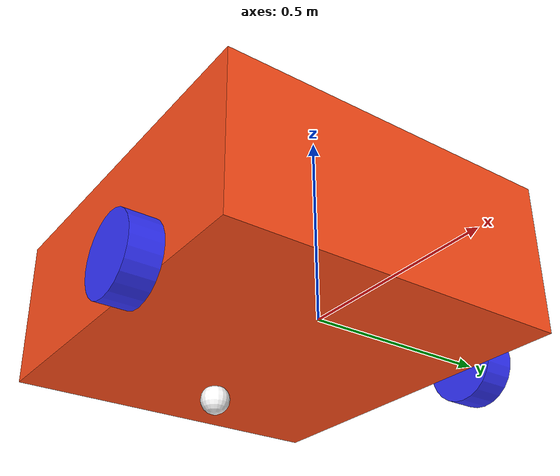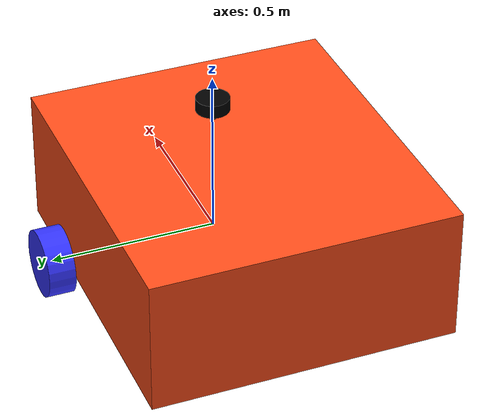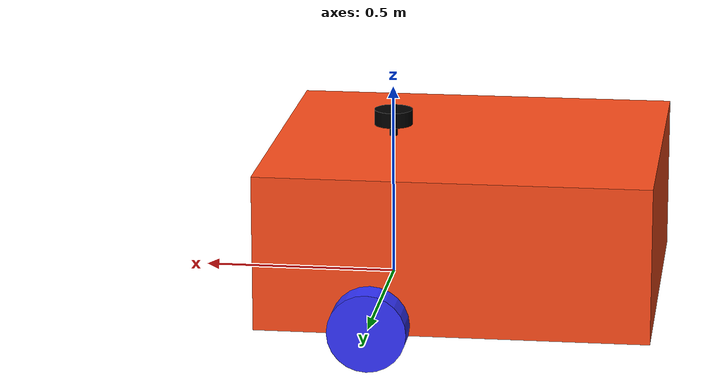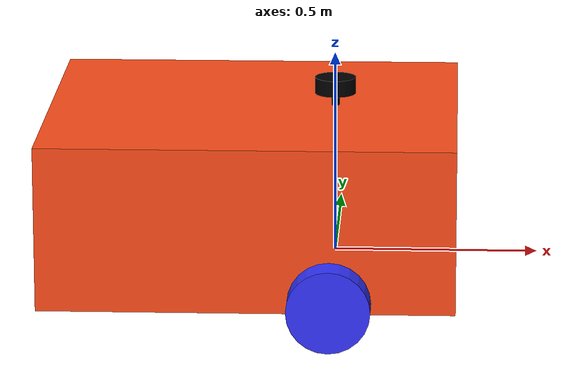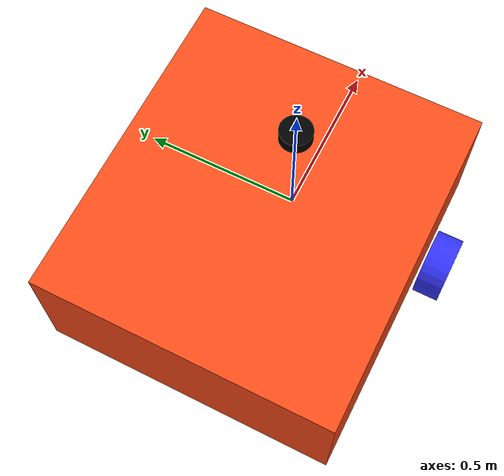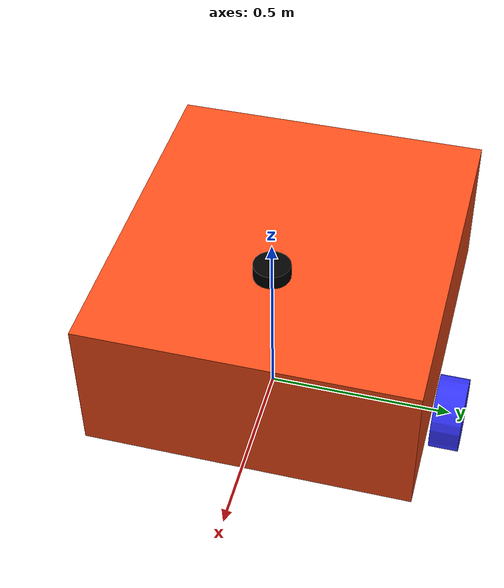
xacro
<?xml version="1.0"?>
<robot xmlns:xacro="http://www.ros.org/wiki/xacro" name="differential_drive_robot">

    <xacro:arg name="use_ros2_control" default="true"/>
    <xacro:arg name="sim_mode" default="true"/>

    <xacro:include filename="robot_core.xacro" />

    <xacro:if value="$(arg use_ros2_control)">
        <xacro:include filename="ros2_control.xacro" />
    </xacro:if>
    <xacro:unless value="$(arg use_ros2_control)">
        <xacro:include filename="gazebo_control.xacro" />
    </xacro:unless>

    <xacro:include filename="lidar.xacro" />
</robot>

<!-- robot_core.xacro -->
<robot xmlns:xacro="http://www.ros.org/wiki/xacro" >

    <xacro:include filename="inertial_macros.xacro"/>
    <xacro:include filename="colours.xacro"/>

    <xacro:property name="chassis_length" value="1.0"/>
    <xacro:property name="chassis_width" value="0.9"/>
    <xacro:property name="chassis_height" value="0.4"/>
    <xacro:property name="chassis_mass" value="4.0"/>
    <xacro:property name="wheel_radius" value="0.1"/>
    <xacro:property name="wheel_thickness" value="0.08"/>
    <xacro:property name="wheel_mass" value="0.2"/>
    <xacro:property name="wheel_offset_x" value="0.7"/>
    <xacro:property name="wheel_offset_y" value="0.5"/>
    <xacro:property name="wheel_offset_z" value="0.03"/>
    <xacro:property name="caster_wheel_radius" value="0.04"/>
    <xacro:property name="caster_wheel_mass" value="0.05"/>
    <xacro:property name="caster_wheel_offset_x" value="0.25"/>
    <xacro:property name="caster_wheel_offset_z" value="${wheel_offset_z - wheel_radius + caster_wheel_radius}"/>

    <!-- BASE LINK -->

    <link name="base_link">

    </link>

    <!-- BASE_FOOTPRINT LINK -->

    <joint name="base_footprint_joint" type="fixed">
        <parent link="base_link"/>
        <child link="base_footprint"/>
        <origin xyz="0 0 0" rpy="0 0 0"/>
    </joint>

    <link name="base_footprint">
    </link>

    <!-- CHASSIS LINK -->

    <joint name="chassis_joint" type="fixed">
        <parent link="base_link"/>
        <child link="chassis"/>
        <origin xyz="${-wheel_offset_x} 0 ${-wheel_offset_z}"/>
    </joint>

    <link name="chassis">
        <visual>
            <origin xyz="${chassis_length/2} 0 ${chassis_height/2}"/>
            <geometry>
                <box size="${chassis_length} ${chassis_width} ${chassis_height}"/>
            </geometry>
            <material name="orange"/>
        </visual>
        <collision>
            <origin xyz="${chassis_length/2} 0 ${chassis_height/2}"/>
            <geometry>
                <box size="${chassis_length} ${chassis_width} ${chassis_height}"/>
            </geometry>
        </collision>
        <xacro:inertial_box mass="0.5" x="${chassis_length}" y="${chassis_width}" z="${chassis_height}">
            <origin xyz="${chassis_length/2} 0 ${chassis_height/2}" rpy="0 0 0"/>
        </xacro:inertial_box>
    </link>

    <gazebo reference="chassis">
        <material>Gazebo/Orange</material>
    </gazebo>

    <!-- LEFT WHEEL LINK -->

    <joint name="left_wheel_joint" type="continuous">
        <parent link="base_link"/>
        <child link="left_wheel"/>
        <origin xyz="0 ${wheel_offset_y} 0" rpy="-${pi/2} 0 0" />
        <axis xyz="0 0 1"/>
    </joint>

    <link name="left_wheel">
        <visual>
            <geometry>
                <cylinder radius="${wheel_radius}" length="${wheel_thickness}"/>
            </geometry>
            <material name="blue"/>
        </visual>
        <collision>
            <geometry>
                <sphere radius="${wheel_radius}"/>
            </geometry>
        </collision>
        <xacro:inertial_cylinder mass="${wheel_mass}" length="${wheel_thickness}" radius="${wheel_radius}">
            <origin xyz="0 0 0" rpy="0 0 0"/>
        </xacro:inertial_cylinder>
    </link>

    <gazebo reference="left_wheel">
        <material>Gazebo/Blue</material>
    </gazebo>

    <!-- RIGHT WHEEL LINK -->

    <joint name="right_wheel_joint" type="continuous">
        <parent link="base_link"/>
        <child link="right_wheel"/>
        <origin xyz="0 ${-wheel_offset_y} 0" rpy="${pi/2} 0 0" />
        <axis xyz="0 0 -1"/>
    </joint>

    <link name="right_wheel">
        <visual>
            <geometry>
                <cylinder radius="${wheel_radius}" length="${wheel_thickness}"/>
            </geometry>
            <material name="blue"/>
        </visual>
        <collision>
            <geometry>
                <sphere radius="${wheel_radius}"/>
            </geometry>
        </collision>
        <xacro:inertial_cylinder mass="${wheel_mass}" length="${wheel_thickness}" radius="${wheel_radius}">
            <origin xyz="0 0 0" rpy="0 0 0"/>
        </xacro:inertial_cylinder>
    </link>

    <gazebo reference="right_wheel">
        <material>Gazebo/Blue</material>
    </gazebo>

    <!-- CASTER WHEEL LINK -->

    <joint name="caster_wheel_joint" type="fixed">
        <parent link="chassis"/>
        <child link="caster_wheel"/>
        <origin xyz="${caster_wheel_offset_x} 0 ${caster_wheel_offset_z}"/>
    </joint>

    <link name="caster_wheel">
        <visual>
            <geometry>
                <sphere radius="${caster_wheel_radius}"/>
            </geometry>
            <material name="white"/>
        </visual>
        <collision>
            <geometry>
                <sphere radius="${caster_wheel_radius}"/>
            </geometry>
        </collision>
        <xacro:inertial_sphere mass="${caster_wheel_mass}" radius="${caster_wheel_radius}">
            <origin xyz="0 0 0" rpy="0 0 0"/>
        </xacro:inertial_sphere>
    </link>

    <gazebo reference="caster_wheel">
        <material>Gazebo/White</material>
        <mu1 value="0.001"/>
        <mu2 value="0.001"/>
    </gazebo>

</robot>

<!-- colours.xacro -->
<robot xmlns:xacro="http://www.ros.org/wiki/xacro">

    <material name="white">
        <color rgba="1 1 1 1"/>
    </material>

    <material name="orange">
        <color rgba="1 0.3 0.1 1"/>
    </material>

    <material name="blue">
        <color rgba="0.2 0.2 1 1"/>
    </material>

    <material name="black">
        <color rgba="0 0 0 1"/>
    </material>

</robot>

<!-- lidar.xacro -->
<robot xmlns:xacro="http://www.ros.org/wiki/xacro" >

    <joint name="laser_joint" type="fixed">
        <parent link="chassis"/>
        <child link="laser_frame"/>
        <origin xyz="0.7 0 0.45" rpy="0 0 0"/>
    </joint>

    <link name="laser_frame">
        <visual>
            <geometry>
                <cylinder radius="0.05" length="0.04"/>
            </geometry>
            <material name="black"/>
        </visual>
        <visual>
            <origin xyz="0 0 -0.05"/>
            <geometry>
                <cylinder radius="0.01" length="0.1"/>
            </geometry>
            <material name="black"/>
        </visual>
        <collision>
            <geometry>
                <cylinder radius="0.05" length="0.04"/>
            </geometry>
        </collision>
        <xacro:inertial_cylinder mass="0.1" length="0.04" radius="0.05">
            <origin xyz="0 0 0" rpy="0 0 0"/>
        </xacro:inertial_cylinder>
    </link>

    <gazebo reference="laser_frame">
        <material>Gazebo/Red</material>

        <sensor name="laser" type="ray">
            <pose> 0 0 0 0 0 0 </pose>
            <visualize>true</visualize>
            <update_rate>10</update_rate>
            <ray>
                <scan>
                    <horizontal>
                        <samples>30</samples>
                        <min_angle>-3.14</min_angle>
                        <max_angle>3.14</max_angle>
                    </horizontal>
                </scan>
                <range>
                    <min>0.3</min>
                    <max>12</max>
                </range>
                <noise>
                    <type>gaussian</type>
                    <mean>0.0</mean>
                    <stddev>0.01</stddev>
                </noise>
            </ray>
            <plugin name="gazebo_ros2_laser" filename="libgazebo_ros_ray_sensor.so">
                <ros>
                    <argument>~/out:=/scan</argument>
                </ros>
                <output_type>sensor_msgs/LaserScan</output_type>
                <frame_name>laser_frame</frame_name>
            </plugin>
        </sensor>
    </gazebo>

</robot>
